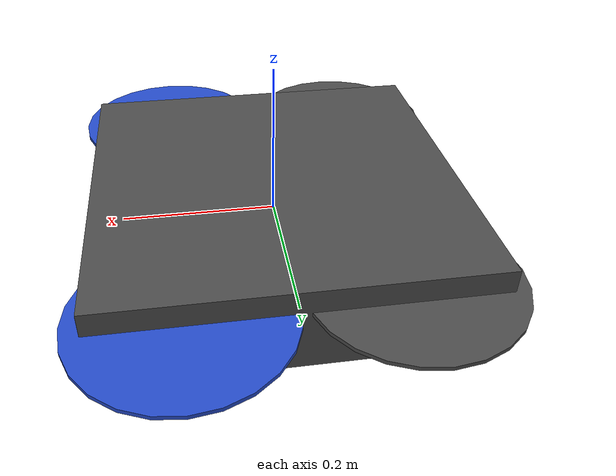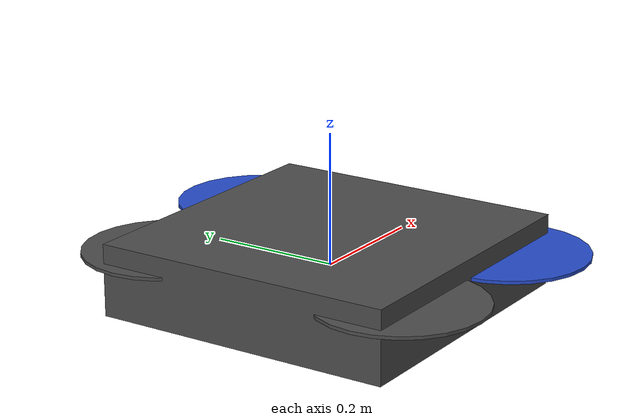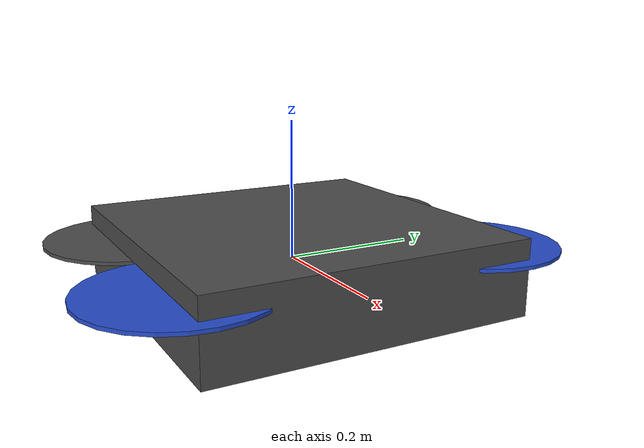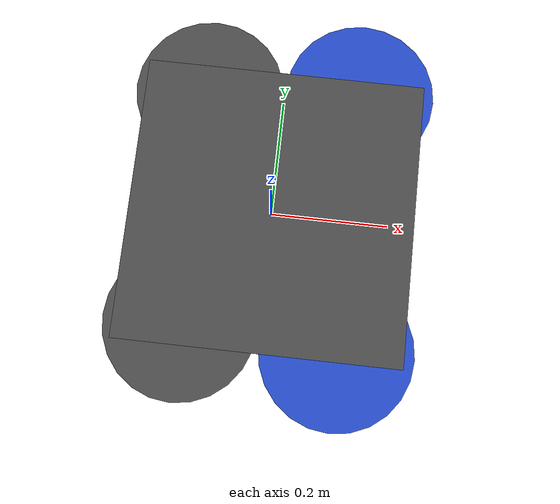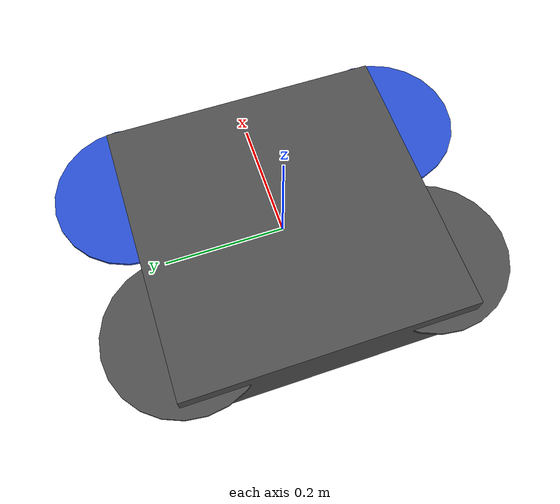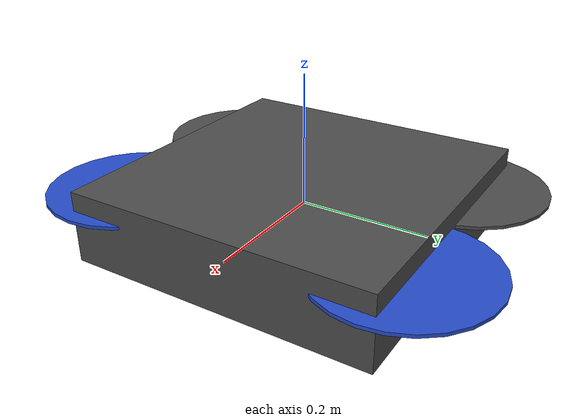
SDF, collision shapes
<?xml version='1.0'?>
<sdf version='1.6'>
  <model name='iris_hitl_hbv_1615'>
    <include>
      <uri>model://iris_hitl</uri>
    </include>
    <include>
      <uri>model://hbv_1615</uri>
      <pose>0 0 -0.0425 0 1.57 0</pose>
    </include>
    <joint name="iris_hitl::hbv_1615_joint" type="revolute">
      <parent>iris_hitl::base_link</parent>
      <child>hbv_1615::link</child>
      <axis>
        <xyz>0 0 -1</xyz>
        <limit>
          <upper>0</upper>
          <lower>0</lower>
        </limit>
      </axis>
    </joint>
  </model>
</sdf>

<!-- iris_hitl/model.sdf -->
<sdf version='1.6'>
    <model name='iris'>
      <link name='base_link'>
        <pose frame=''>0 0 0 0 -0 0</pose>
        <inertial>
          <pose frame=''>0 0 0 0 -0 0</pose>
          <mass>1.5</mass>
          <inertia>
            <ixx>0.029125</ixx>
            <ixy>0</ixy>
            <ixz>0</ixz>
            <iyy>0.029125</iyy>
            <iyz>0</iyz>
            <izz>0.055225</izz>
          </inertia>
        </inertial>
        <collision name='base_link_inertia_collision'>
          <pose frame=''>0 0 0 0 -0 0</pose>
          <geometry>
            <box>
              <size>0.47 0.47 0.11</size>
            </box>
          </geometry>
          <surface>
            <contact>
              <ode>
                <min_depth>0.001</min_depth>
                <max_vel>0</max_vel>
              </ode>
            </contact>
            <friction>
              <ode/>
            </friction>
          </surface>
        </collision>
        <visual name='base_link_inertia_visual'>
          <pose frame=''>0 0 0 0 -0 0</pose>
          <geometry>
            <mesh>
              <scale>1 1 1</scale>
              <uri>model://rotors_description/meshes/iris.stl</uri>
            </mesh>
          </geometry>
          <material>
            <script>
              <name>Gazebo/DarkGrey</name>
              <uri>file://media/materials/scripts/gazebo.material</uri>
            </script>
          </material>
        </visual>
        <gravity>1</gravity>
        <velocity_decay/>
      </link>
      <link name='/imu_link'>
        <pose frame=''>0 0 0 0 -0 0</pose>
        <inertial>
          <pose frame=''>0 0 0 0 -0 0</pose>
          <mass>0.015</mass>
          <inertia>
            <ixx>1e-05</ixx>
            <ixy>0</ixy>
            <ixz>0</ixz>
            <iyy>1e-05</iyy>
            <iyz>0</iyz>
            <izz>1e-05</izz>
          </inertia>
        </inertial>
      </link>
      <joint name='/imu_joint' type='revolute'>
        <child>/imu_link</child>
        <parent>base_link</parent>
        <axis>
          <xyz>1 0 0</xyz>
          <limit>
            <lower>0</lower>
            <upper>0</upper>
            <effort>0</effort>
            <velocity>0</velocity>
          </limit>
          <dynamics>
            <spring_reference>0</spring_reference>
            <spring_stiffness>0</spring_stiffness>
          </dynamics>
          <use_parent_model_frame>1</use_parent_model_frame>
        </axis>
      </joint>
      <link name='rotor_0'>
        <pose frame=''>0.13 -0.22 0.023 0 -0 0</pose>
        <inertial>
          <pose frame=''>0 0 0 0 -0 0</pose>
          <mass>0.005</mass>
          <inertia>
            <ixx>9.75e-07</ixx>
            <ixy>0</ixy>
            <ixz>0</ixz>
            <iyy>0.000273104</iyy>
            <iyz>0</iyz>
            <izz>0.000274004</izz>
          </inertia>
        </inertial>
        <collision name='rotor_0_collision'>
          <pose frame=''>0 0 0 0 -0 0</pose>
          <geometry>
            <cylinder>
              <length>0.005</length>
              <radius>0.128</radius>
            </cylinder>
          </geometry>
          <surface>
            <contact>
              <ode/>
            </contact>
            <friction>
              <ode/>
            </friction>
          </surface>
        </collision>
        <visual name='rotor_0_visual'>
          <pose frame=''>0 0 0 0 -0 0</pose>
          <geometry>
            <mesh>
              <scale>1 1 1</scale>
              <uri>model://rotors_description/meshes/iris_prop_ccw.dae</uri>
            </mesh>
          </geometry>
          <material>
            <script>
              <name>Gazebo/Blue</name>
              <uri>file://media/materials/scripts/gazebo.material</uri>
            </script>
          </material>
        </visual>
        <gravity>1</gravity>
        <velocity_decay/>
      </link>
      <joint name='rotor_0_joint' type='revolute'>
        <child>rotor_0</child>
        <parent>base_link</parent>
        <axis>
          <xyz>0 0 1</xyz>
          <limit>
            <lower>-1e+16</lower>
            <upper>1e+16</upper>
          </limit>
          <dynamics>
            <spring_reference>0</spring_reference>
            <spring_stiffness>0</spring_stiffness>
          </dynamics>
          <use_parent_model_frame>1</use_parent_model_frame>
        </axis>
      </joint>
      <link name='rotor_1'>
        <pose frame=''>-0.13 0.2 0.023 0 -0 0</pose>
        <inertial>
          <pose frame=''>0 0 0 0 -0 0</pose>
          <mass>0.005</mass>
          <inertia>
            <ixx>9.75e-07</ixx>
            <ixy>0</ixy>
            <ixz>0</ixz>
            <iyy>0.000273104</iyy>
            <iyz>0</iyz>
            <izz>0.000274004</izz>
          </inertia>
        </inertial>
        <collision name='rotor_1_collision'>
          <pose frame=''>0 0 0 0 -0 0</pose>
          <geometry>
            <cylinder>
              <length>0.005</length>
              <radius>0.128</radius>
            </cylinder>
          </geometry>
          <surface>
            <contact>
              <ode/>
            </contact>
            <friction>
              <ode/>
            </friction>
          </surface>
        </collision>
        <visual name='rotor_1_visual'>
          <pose frame=''>0 0 0 0 -0 0</pose>
          <geometry>
            <mesh>
              <scale>1 1 1</scale>
              <uri>model://rotors_description/meshes/iris_prop_ccw.dae</uri>
            </mesh>
          </geometry>
          <material>
            <script>
              <name>Gazebo/DarkGrey</name>
              <uri>file://media/materials/scripts/gazebo.material</uri>
            </script>
          </material>
        </visual>
        <gravity>1</gravity>
        <velocity_decay/>
      </link>
      <joint name='rotor_1_joint' type='revolute'>
        <child>rotor_1</child>
        <parent>base_link</parent>
        <axis>
          <xyz>0 0 1</xyz>
          <limit>
            <lower>-1e+16</lower>
            <upper>1e+16</upper>
          </limit>
          <dynamics>
            <spring_reference>0</spring_reference>
            <spring_stiffness>0</spring_stiffness>
          </dynamics>
          <use_parent_model_frame>1</use_parent_model_frame>
        </axis>
      </joint>
      <link name='rotor_2'>
        <pose frame=''>0.13 0.22 0.023 0 -0 0</pose>
        <inertial>
          <pose frame=''>0 0 0 0 -0 0</pose>
          <mass>0.005</mass>
          <inertia>
            <ixx>9.75e-07</ixx>
            <ixy>0</ixy>
            <ixz>0</ixz>
            <iyy>0.000273104</iyy>
            <iyz>0</iyz>
            <izz>0.000274004</izz>
          </inertia>
        </inertial>
        <collision name='rotor_2_collision'>
          <pose frame=''>0 0 0 0 -0 0</pose>
          <geometry>
            <cylinder>
              <length>0.005</length>
              <radius>0.128</radius>
            </cylinder>
          </geometry>
          <surface>
            <contact>
              <ode/>
            </contact>
            <friction>
              <ode/>
            </friction>
          </surface>
        </collision>
        <visual name='rotor_2_visual'>
          <pose frame=''>0 0 0 0 -0 0</pose>
          <geometry>
            <mesh>
              <scale>1 1 1</scale>
              <uri>model://rotors_description/meshes/iris_prop_cw.dae</uri>
            </mesh>
          </geometry>
          <material>
            <script>
              <name>Gazebo/Blue</name>
              <uri>file://media/materials/scripts/gazebo.material</uri>
            </script>
          </material>
        </visual>
        <gravity>1</gravity>
        <velocity_decay/>
      </link>
      <joint name='rotor_2_joint' type='revolute'>
        <child>rotor_2</child>
        <parent>base_link</parent>
        <axis>
          <xyz>0 0 1</xyz>
          <limit>
            <lower>-1e+16</lower>
            <upper>1e+16</upper>
          </limit>
          <dynamics>
            <spring_reference>0</spring_reference>
            <spring_stiffness>0</spring_stiffness>
          </dynamics>
          <use_parent_model_frame>1</use_parent_model_frame>
        </axis>
      </joint>
      <link name='rotor_3'>
        <pose frame=''>-0.13 -0.2 0.023 0 -0 0</pose>
        <inertial>
          <pose frame=''>0 0 0 0 -0 0</pose>
          <mass>0.005</mass>
          <inertia>
            <ixx>9.75e-07</ixx>
            <ixy>0</ixy>
            <ixz>0</ixz>
            <iyy>0.000273104</iyy>
            <iyz>0</iyz>
            <izz>0.000274004</izz>
          </inertia>
        </inertial>
        <collision name='rotor_3_collision'>
          <pose frame=''>0 0 0 0 -0 0</pose>
          <geometry>
            <cylinder>
              <length>0.005</length>
              <radius>0.128</radius>
            </cylinder>
          </geometry>
          <surface>
            <contact>
              <ode/>
            </contact>
            <friction>
              <ode/>
            </friction>
          </surface>
        </collision>
        <visual name='rotor_3_visual'>
          <pose frame=''>0 0 0 0 -0 0</pose>
          <geometry>
            <mesh>
              <scale>1 1 1</scale>
              <uri>model://rotors_description/meshes/iris_prop_cw.dae</uri>
            </mesh>
          </geometry>
          <material>
            <script>
              <name>Gazebo/DarkGrey</name>
              <uri>file://media/materials/scripts/gazebo.material</uri>
            </script>
          </material>
        </visual>
        <gravity>1</gravity>
        <velocity_decay/>
      </link>
      <joint name='rotor_3_joint' type='revolute'>
        <child>rotor_3</child>
        <parent>base_link</parent>
        <axis>
          <xyz>0 0 1</xyz>
          <limit>
            <lower>-1e+16</lower>
            <upper>1e+16</upper>
          </limit>
          <dynamics>
            <spring_reference>0</spring_reference>
            <spring_stiffness>0</spring_stiffness>
          </dynamics>
          <use_parent_model_frame>1</use_parent_model_frame>
        </axis>
      </joint>
      <plugin name='rosbag' filename='libgazebo_multirotor_base_plugin.so'>
        <robotNamespace/>
        <linkName>base_link</linkName>
        <rotorVelocitySlowdownSim>10</rotorVelocitySlowdownSim>
      </plugin>
      <plugin name='front_right_motor_model' filename='libgazebo_motor_model.so'>
        <robotNamespace/>
        <jointName>rotor_0_joint</jointName>
        <linkName>rotor_0</linkName>
        <turningDirection>ccw</turningDirection>
        <timeConstantUp>0.0125</timeConstantUp>
        <timeConstantDown>0.025</timeConstantDown>
        <maxRotVelocity>1100</maxRotVelocity>
        <motorConstant>8.54858e-06</motorConstant>
        <momentConstant>0.06</momentConstant>
        <commandSubTopic>/gazebo/command/motor_speed</commandSubTopic>
        <motorNumber>0</motorNumber>
        <rotorDragCoefficient>0.000175</rotorDragCoefficient>
        <rollingMomentCoefficient>1e-06</rollingMomentCoefficient>
        <motorSpeedPubTopic>/motor_speed/0</motorSpeedPubTopic>
        <rotorVelocitySlowdownSim>10</rotorVelocitySlowdownSim>
      </plugin>
      <plugin name='back_left_motor_model' filename='libgazebo_motor_model.so'>
        <robotNamespace/>
        <jointName>rotor_1_joint</jointName>
        <linkName>rotor_1</linkName>
        <turningDirection>ccw</turningDirection>
        <timeConstantUp>0.0125</timeConstantUp>
        <timeConstantDown>0.025</timeConstantDown>
        <maxRotVelocity>1100</maxRotVelocity>
        <motorConstant>8.54858e-06</motorConstant>
        <momentConstant>0.06</momentConstant>
        <commandSubTopic>/gazebo/command/motor_speed</commandSubTopic>
        <motorNumber>1</motorNumber>
        <rotorDragCoefficient>0.000175</rotorDragCoefficient>
        <rollingMomentCoefficient>1e-06</rollingMomentCoefficient>
        <motorSpeedPubTopic>/motor_speed/1</motorSpeedPubTopic>
        <rotorVelocitySlowdownSim>10</rotorVelocitySlowdownSim>
      </plugin>
      <plugin name='front_left_motor_model' filename='libgazebo_motor_model.so'>
        <robotNamespace/>
        <jointName>rotor_2_joint</jointName>
        <linkName>rotor_2</linkName>
        <turningDirection>cw</turningDirection>
        <timeConstantUp>0.0125</timeConstantUp>
        <timeConstantDown>0.025</timeConstantDown>
        <maxRotVelocity>1100</maxRotVelocity>
        <motorConstant>8.54858e-06</motorConstant>
        <momentConstant>0.06</momentConstant>
        <commandSubTopic>/gazebo/command/motor_speed</commandSubTopic>
        <motorNumber>2</motorNumber>
        <rotorDragCoefficient>0.000175</rotorDragCoefficient>
        <rollingMomentCoefficient>1e-06</rollingMomentCoefficient>
        <motorSpeedPubTopic>/motor_speed/2</motorSpeedPubTopic>
        <rotorVelocitySlowdownSim>10</rotorVelocitySlowdownSim>
      </plugin>
      <plugin name='back_right_motor_model' filename='libgazebo_motor_model.so'>
        <robotNamespace/>
        <jointName>rotor_3_joint</jointName>
        <linkName>rotor_3</linkName>
        <turningDirection>cw</turningDirection>
        <timeConstantUp>0.0125</timeConstantUp>
        <timeConstantDown>0.025</timeConstantDown>
        <maxRotVelocity>1100</maxRotVelocity>
        <motorConstant>8.54858e-06</motorConstant>
        <momentConstant>0.06</momentConstant>
        <commandSubTopic>/gazebo/command/motor_speed</commandSubTopic>
        <motorNumber>3</motorNumber>
        <rotorDragCoefficient>0.000175</rotorDragCoefficient>
        <rollingMomentCoefficient>1e-06</rollingMomentCoefficient>
        <motorSpeedPubTopic>/motor_speed/3</motorSpeedPubTopic>
        <rotorVelocitySlowdownSim>10</rotorVelocitySlowdownSim>
      </plugin>
      <plugin name='gps_plugin' filename='libgazebo_gps_plugin.so'>
        <robotNamespace/>
        <gpsNoise>1</gpsNoise>
      </plugin>
      <plugin name='magnetometer_plugin' filename='libgazebo_magnetometer_plugin.so'>
        <robotNamespace/>
        <pubRate>100</pubRate>
        <noiseDensity>0.0004</noiseDensity>
        <randomWalk>6.4e-06</randomWalk>
        <biasCorrelationTime>600</biasCorrelationTime>
        <magTopic>/mag</magTopic>
      </plugin>
      <plugin name='barometer_plugin' filename='libgazebo_barometer_plugin.so'>
        <robotNamespace/>
        <pubRate>50</pubRate>
        <baroTopic>/baro</baroTopic>
      </plugin>
      <plugin name='mavlink_interface' filename='libgazebo_mavlink_interface.so'>
        <robotNamespace/>
        <imuSubTopic>/imu</imuSubTopic>
        <gpsSubTopic>/gps</gpsSubTopic>
        <magSubTopic>/mag</magSubTopic>
        <baroSubTopic>/baro</baroSubTopic>
        <mavlink_addr>INADDR_ANY</mavlink_addr>
        <mavlink_udp_port>14560</mavlink_udp_port>
        <mavlink_tcp_port>4560</mavlink_tcp_port>
        <serialEnabled>true</serialEnabled>
        <serialDevice>/dev/ttyACM0</serialDevice>
        <baudRate>921600</baudRate>
        <qgc_addr>INADDR_ANY</qgc_addr>
        <qgc_udp_port>14550</qgc_udp_port>
        <sdk_addr>INADDR_ANY</sdk_addr>
        <sdk_udp_port>14540</sdk_udp_port>
        <hil_mode>true</hil_mode>
        <hil_state_level>0</hil_state_level>
        <vehicle_is_tailsitter>0</vehicle_is_tailsitter>
        <send_vision_estimation>1</send_vision_estimation>
        <send_odometry>0</send_odometry>
        <enable_lockstep>1</enable_lockstep>
        <use_tcp>1</use_tcp>
        <motorSpeedCommandPubTopic>/gazebo/command/motor_speed</motorSpeedCommandPubTopic>
        <control_channels>
          <channel name='rotor1'>
            <input_index>0</input_index>
            <input_offset>0</input_offset>
            <input_scaling>1000</input_scaling>
            <zero_position_disarmed>0</zero_position_disarmed>
            <zero_position_armed>100</zero_position_armed>
            <joint_control_type>velocity</joint_control_type>
          </channel>
          <channel name='rotor2'>
            <input_index>1</input_index>
            <input_offset>0</input_offset>
            <input_scaling>1000</input_scaling>
            <zero_position_disarmed>0</zero_position_disarmed>
            <zero_position_armed>100</zero_position_armed>
            <joint_control_type>velocity</joint_control_type>
          </channel>
          <channel name='rotor3'>
            <input_index>2</input_index>
            <input_offset>0</input_offset>
            <input_scaling>1000</input_scaling>
            <zero_position_disarmed>0</zero_position_disarmed>
            <zero_position_armed>100</zero_position_armed>
            <joint_control_type>velocity</joint_control_type>
          </channel>
          <channel name='rotor4'>
            <input_index>3</input_index>
            <input_offset>0</input_offset>
            <input_scaling>1000</input_scaling>
            <zero_position_disarmed>0</zero_position_disarmed>
            <zero_position_armed>100</zero_position_armed>
            <joint_control_type>velocity</joint_control_type>
          </channel>
          <channel name='rotor5'>
            <input_index>4</input_index>
            <input_offset>1</input_offset>
            <input_scaling>324.6</input_scaling>
            <zero_position_disarmed>0</zero_position_disarmed>
            <zero_position_armed>0</zero_position_armed>
            <joint_control_type>velocity</joint_control_type>
            <joint_control_pid>
              <p>0.1</p>
              <i>0</i>
              <d>0</d>
              <iMax>0.0</iMax>
              <iMin>0.0</iMin>
              <cmdMax>2</cmdMax>
              <cmdMin>-2</cmdMin>
            </joint_control_pid>
            <joint_name>zephyr_delta_wing::propeller_joint</joint_name>
          </channel>
          <channel name='rotor6'>
            <input_index>5</input_index>
            <input_offset>0</input_offset>
            <input_scaling>0.524</input_scaling>
            <zero_position_disarmed>0</zero_position_disarmed>
            <zero_position_armed>0</zero_position_armed>
            <joint_control_type>position</joint_control_type>
            <joint_name>zephyr_delta_wing::flap_left_joint</joint_name>
            <joint_control_pid>
              <p>10.0</p>
              <i>0</i>
              <d>0</d>
              <iMax>0</iMax>
              <iMin>0</iMin>
              <cmdMax>20</cmdMax>
              <cmdMin>-20</cmdMin>
            </joint_control_pid>
          </channel>
          <channel name='rotor7'>
            <input_index>6</input_index>
            <input_offset>0</input_offset>
            <input_scaling>0.524</input_scaling>
            <zero_position_disarmed>0</zero_position_disarmed>
            <zero_position_armed>0</zero_position_armed>
            <joint_control_type>position</joint_control_type>
            <joint_name>zephyr_delta_wing::flap_right_joint</joint_name>
            <joint_control_pid>
              <p>10.0</p>
              <i>0</i>
              <d>0</d>
              <iMax>0</iMax>
              <iMin>0</iMin>
              <cmdMax>20</cmdMax>
              <cmdMin>-20</cmdMin>
            </joint_control_pid>
          </channel>
          <channel name='rotor8'>
            <input_index>7</input_index>
            <input_offset>0</input_offset>
            <input_scaling>0.524</input_scaling>
            <zero_position_disarmed>0</zero_position_disarmed>
            <zero_position_armed>0</zero_position_armed>
            <joint_control_type>position</joint_control_type>
          </channel>
        </control_channels>
      </plugin>
      <static>0</static>
      <plugin name='rotors_gazebo_imu_plugin' filename='libgazebo_imu_plugin.so'>
        <robotNamespace/>
        <linkName>/imu_link</linkName>
        <imuTopic>/imu</imuTopic>
        <gyroscopeNoiseDensity>0.00018665</gyroscopeNoiseDensity>
        <gyroscopeRandomWalk>3.8785e-05</gyroscopeRandomWalk>
        <gyroscopeBiasCorrelationTime>1000.0</gyroscopeBiasCorrelationTime>
        <gyroscopeTurnOnBiasSigma>0.0087</gyroscopeTurnOnBiasSigma>
        <accelerometerNoiseDensity>0.00186</accelerometerNoiseDensity>
        <accelerometerRandomWalk>0.006</accelerometerRandomWalk>
        <accelerometerBiasCorrelationTime>300.0</accelerometerBiasCorrelationTime>
        <accelerometerTurnOnBiasSigma>0.196</accelerometerTurnOnBiasSigma>
      </plugin>
    </model>
  </sdf>

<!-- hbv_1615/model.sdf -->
<sdf version="1.6">
  <model name="hbv_1615">
    <pose>0 0 0.05 0 0 0</pose>
    <link name="link">
      <inertial>
        <mass>0.1</mass>
        <inertia>
          <ixx>0.000166667</ixx>
          <iyy>0.000166667</iyy>
          <izz>0.000166667</izz>
        </inertia>
      </inertial>
      <collision name="collision">
        <geometry>
          <box>
            <size>0.0025 0.01 0.01</size>
          </box>
        </geometry>
      </collision>
      <visual name="visual">
        <geometry>
          <box>
            <size>0.0025 0.01 0.01</size>
          </box>
        </geometry>
      </visual>
      <sensor name="hbv_1615" type="camera">
        <update_rate>30</update_rate>
        <camera>
          <horizontal_fov>0.76101617157</horizontal_fov>
          <image>
            <width>640</width>
            <height>480</height>
            <format>R8G8B8</format>
          </image>
          <clip>
            <near>0.01</near>
            <far>300</far>
          </clip>
          <noise>
            <type>gaussian</type>
            <mean>0.0</mean>
            <stddev>0.03</stddev>
          </noise>
        </camera>
        <always_on>1</always_on>
        <visualize>false</visualize>
        <plugin name='camera_plugin' filename='libgazebo_ros_camera.so'>
          <robotNamespace>/</robotNamespace>
          <alwaysOn>true</alwaysOn>
          <imageTopicName>image_raw</imageTopicName>
          <cameraInfoTopicName>camera_info</cameraInfoTopicName>
          <updateRate>30.0</updateRate>
          <cameraName>hbv_1615</cameraName>
          <frameName>hbv_1615_link</frameName>
          <CxPrime>324.9767859502426</CxPrime>
          <Cx>324.9042740349597</Cx>
          <Cy>302.2157252859055</Cy>
          <hackBaseline>0</hackBaseline>
          <focalLength>799.996235</focalLength>
          <distortionK1>0.07194793341347147</distortionK1>
          <distortionK2>-0.1399785658515594</distortionK2>
          <distortionT1>0.007208136185739671</distortionT1>
          <distortionT2>0.0002329870169238057</distortionT2>
          <distortionK3>0.0</distortionK3>
        </plugin>
      </sensor>
    </link>
  </model>
</sdf>
